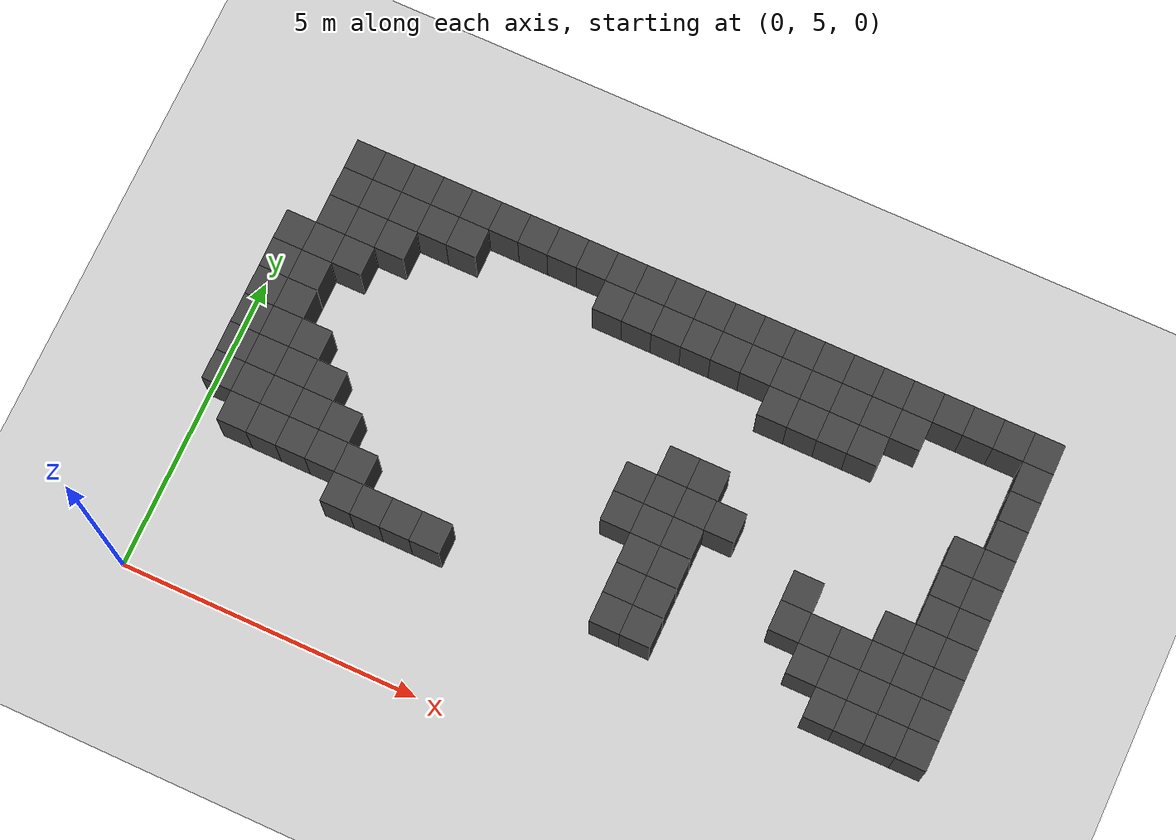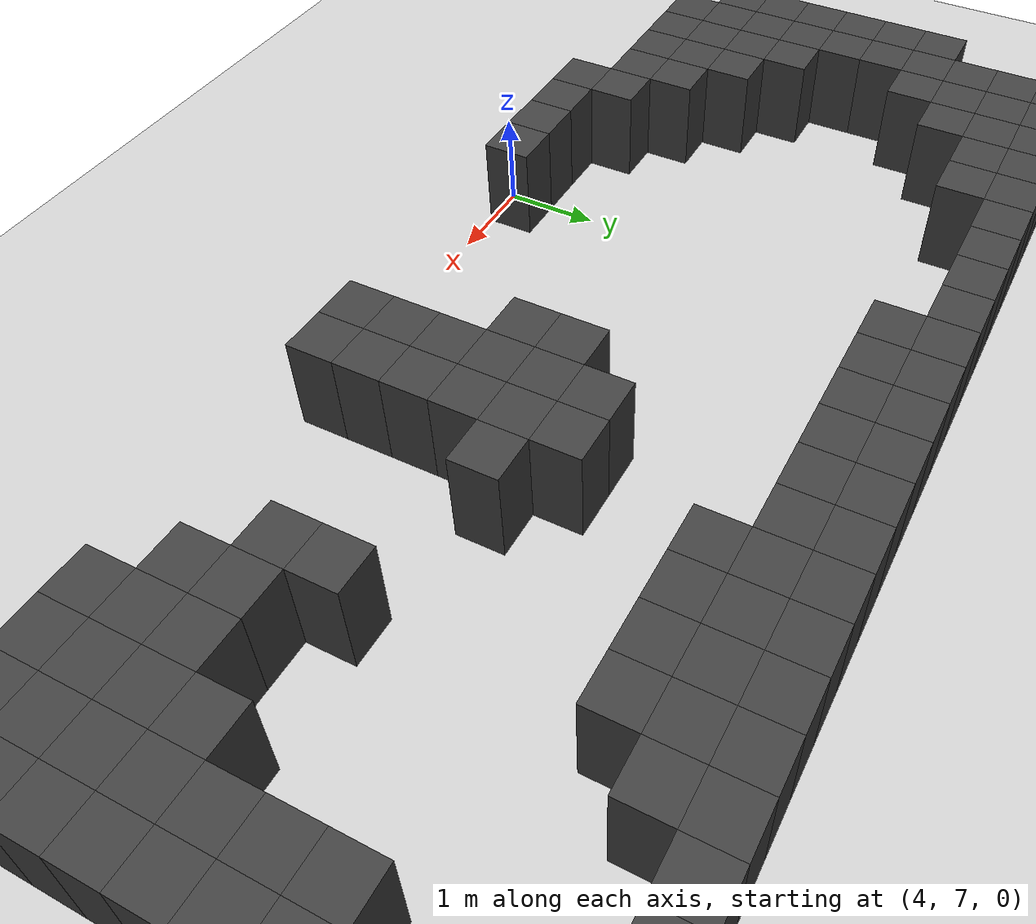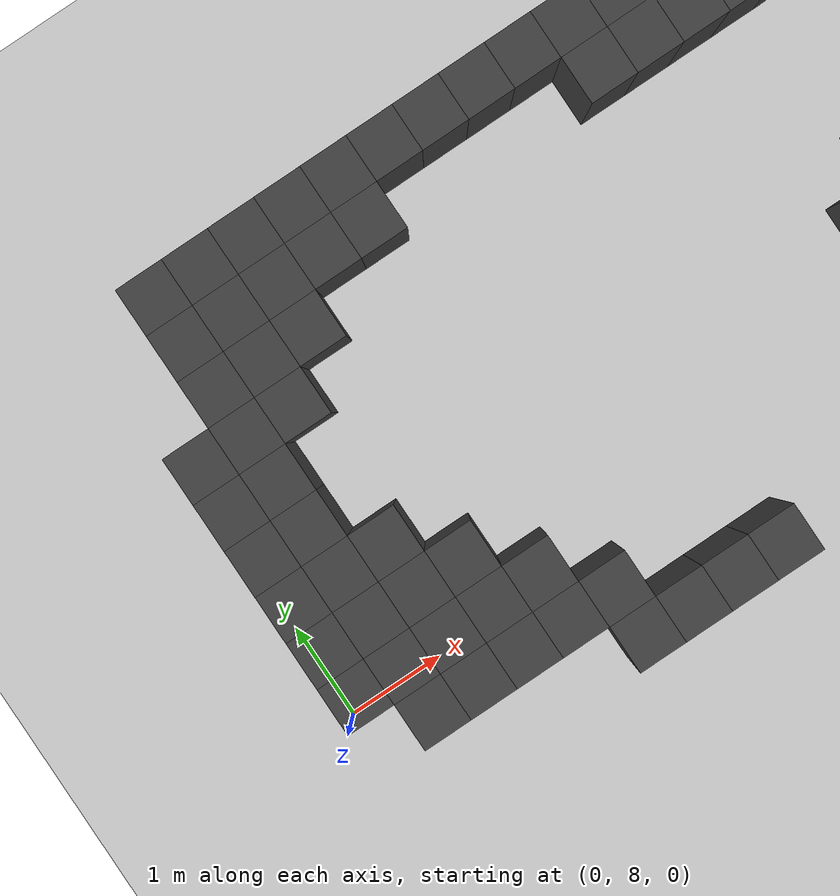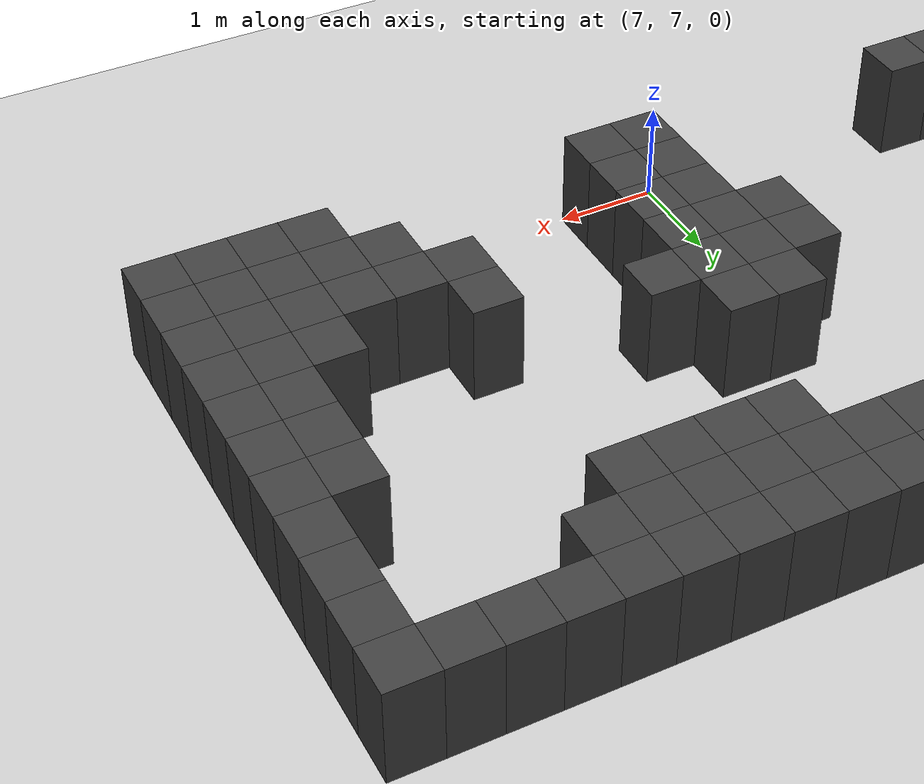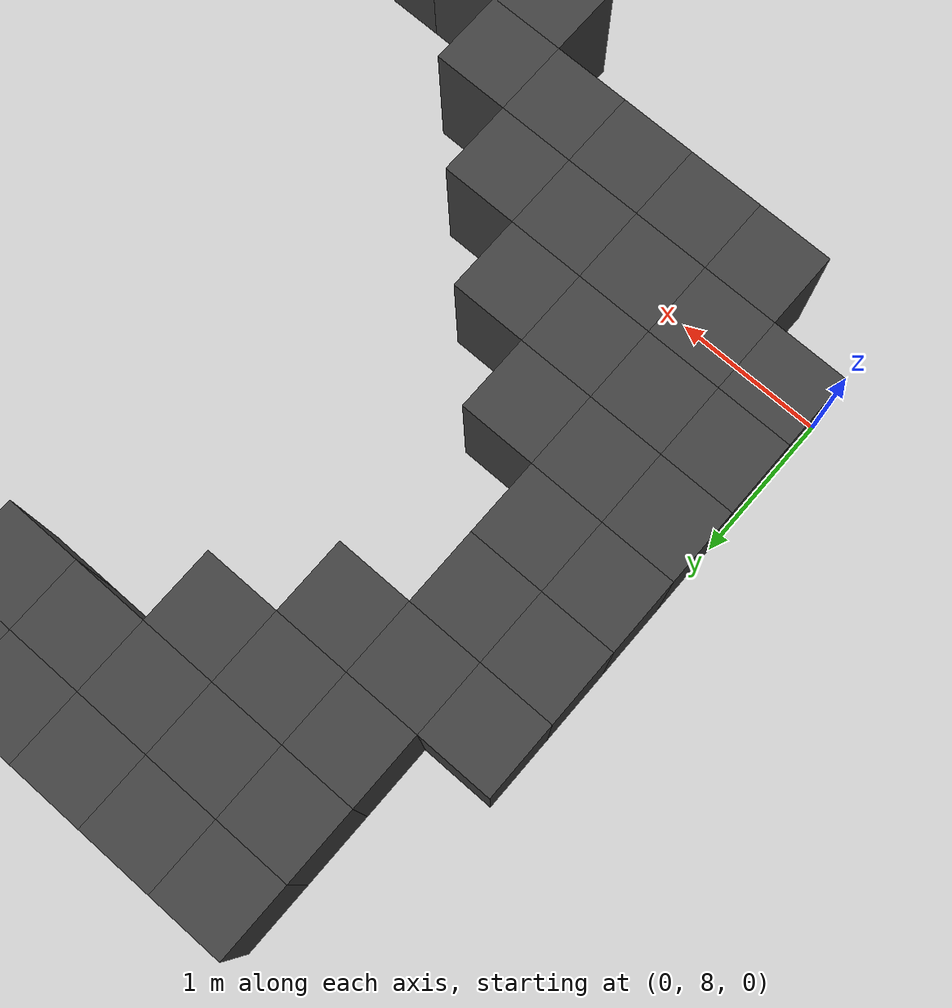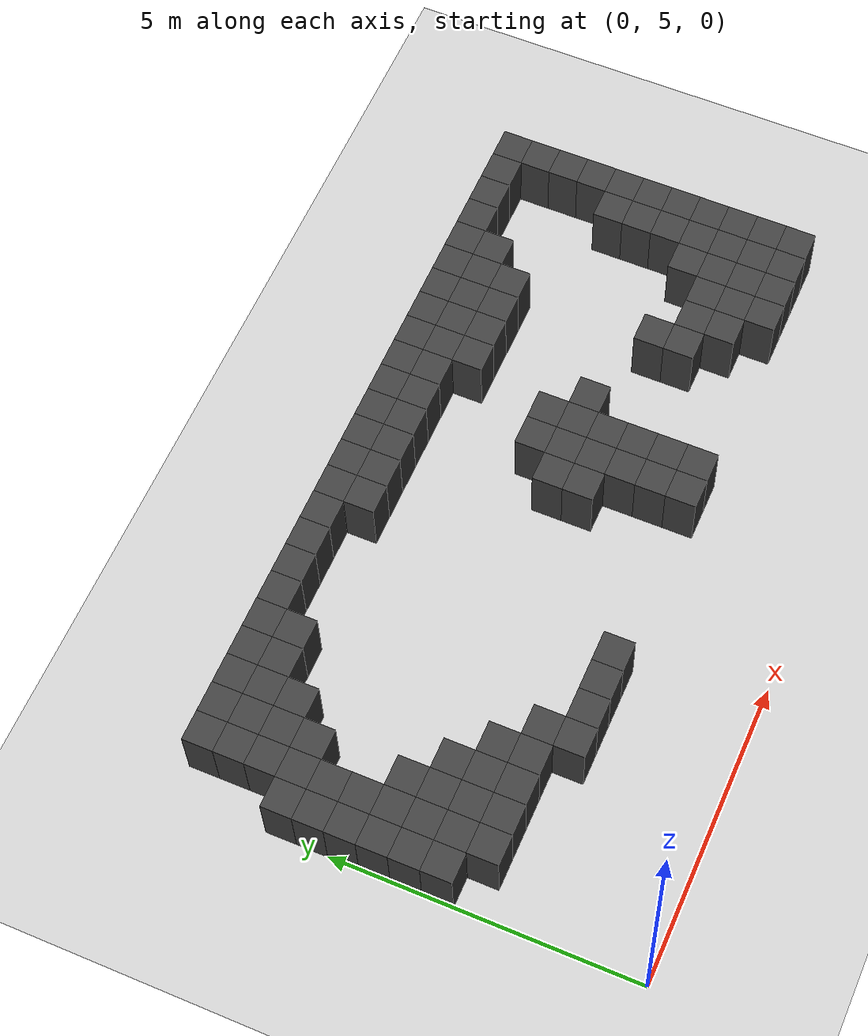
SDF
<sdf version="1.7">
 <world name="map_9061">
  <model name="ground_plane">
   <static>true</static>
   <link name="link">
    <collision name="collision">
     <geometry><plane><normal>0 0 1</normal><size>200 200</size></plane></geometry>
    </collision>
    <visual name="visual">
     <geometry><plane><normal>0 0 1</normal><size>200 200</size></plane></geometry>
     <material><ambient>0.8 0.8 0.8 1</ambient><diffuse>0.8 0.8 0.8 1</diffuse></material>
    </visual>
   </link>
  </model>
  <model name="maze_environment">
   <static>true</static>
   <link name="wall_26">
    <pose>0.750 12.250 0.500 0 0 0</pose>
    <collision name="col"><geometry><box><size>0.5 0.5 1.0</size></box></geometry></collision>
    <visual name="vis">
     <geometry><box><size>0.5 0.5 1.0</size></box></geometry>
     <material><ambient>0.15 0.15 0.15 1</ambient><diffuse>0.25 0.25 0.25 1</diffuse></material>
    </visual>
   </link>
   <link name="wall_27">
    <pose>1.250 12.250 0.500 0 0 0</pose>
    <collision name="col"><geometry><box><size>0.5 0.5 1.0</size></box></geometry></collision>
    <visual name="vis">
     <geometry><box><size>0.5 0.5 1.0</size></box></geometry>
     <material><ambient>0.15 0.15 0.15 1</ambient><diffuse>0.25 0.25 0.25 1</diffuse></material>
    </visual>
   </link>
   <link name="wall_28">
    <pose>1.750 12.250 0.500 0 0 0</pose>
    <collision name="col"><geometry><box><size>0.5 0.5 1.0</size></box></geometry></collision>
    <visual name="vis">
     <geometry><box><size>0.5 0.5 1.0</size></box></geometry>
     <material><ambient>0.15 0.15 0.15 1</ambient><diffuse>0.25 0.25 0.25 1</diffuse></material>
    </visual>
   </link>
   <link name="wall_29">
    <pose>2.250 12.250 0.500 0 0 0</pose>
    <collision name="col"><geometry><box><size>0.5 0.5 1.0</size></box></geometry></collision>
    <visual name="vis">
     <geometry><box><size>0.5 0.5 1.0</size></box></geometry>
     <material><ambient>0.15 0.15 0.15 1</ambient><diffuse>0.25 0.25 0.25 1</diffuse></material>
    </visual>
   </link>
   <link name="wall_30">
    <pose>2.750 12.250 0.500 0 0 0</pose>
    <collision name="col"><geometry><box><size>0.5 0.5 1.0</size></box></geometry></collision>
    <visual name="vis">
     <geometry><box><size>0.5 0.5 1.0</size></box></geometry>
     <material><ambient>0.15 0.15 0.15 1</ambient><diffuse>0.25 0.25 0.25 1</diffuse></material>
    </visual>
   </link>
   <link name="wall_31">
    <pose>3.250 12.250 0.500 0 0 0</pose>
    <collision name="col"><geometry><box><size>0.5 0.5 1.0</size></box></geometry></collision>
    <visual name="vis">
     <geometry><box><size>0.5 0.5 1.0</size></box></geometry>
     <material><ambient>0.15 0.15 0.15 1</ambient><diffuse>0.25 0.25 0.25 1</diffuse></material>
    </visual>
   </link>
   <link name="wall_32">
    <pose>3.750 12.250 0.500 0 0 0</pose>
    <collision name="col"><geometry><box><size>0.5 0.5 1.0</size></box></geometry></collision>
    <visual name="vis">
     <geometry><box><size>0.5 0.5 1.0</size></box></geometry>
     <material><ambient>0.15 0.15 0.15 1</ambient><diffuse>0.25 0.25 0.25 1</diffuse></material>
    </visual>
   </link>
   <link name="wall_33">
    <pose>4.250 12.250 0.500 0 0 0</pose>
    <collision name="col"><geometry><box><size>0.5 0.5 1.0</size></box></geometry></collision>
    <visual name="vis">
     <geometry><box><size>0.5 0.5 1.0</size></box></geometry>
     <material><ambient>0.15 0.15 0.15 1</ambient><diffuse>0.25 0.25 0.25 1</diffuse></material>
    </visual>
   </link>
   <link name="wall_34">
    <pose>4.750 12.250 0.500 0 0 0</pose>
    <collision name="col"><geometry><box><size>0.5 0.5 1.0</size></box></geometry></collision>
    <visual name="vis">
     <geometry><box><size>0.5 0.5 1.0</size></box></geometry>
     <material><ambient>0.15 0.15 0.15 1</ambient><diffuse>0.25 0.25 0.25 1</diffuse></material>
    </visual>
   </link>
   <link name="wall_35">
    <pose>5.250 12.250 0.500 0 0 0</pose>
    <collision name="col"><geometry><box><size>0.5 0.5 1.0</size></box></geometry></collision>
    <visual name="vis">
     <geometry><box><size>0.5 0.5 1.0</size></box></geometry>
     <material><ambient>0.15 0.15 0.15 1</ambient><diffuse>0.25 0.25 0.25 1</diffuse></material>
    </visual>
   </link>
   <link name="wall_36">
    <pose>5.750 12.250 0.500 0 0 0</pose>
    <collision name="col"><geometry><box><size>0.5 0.5 1.0</size></box></geometry></collision>
    <visual name="vis">
     <geometry><box><size>0.5 0.5 1.0</size></box></geometry>
     <material><ambient>0.15 0.15 0.15 1</ambient><diffuse>0.25 0.25 0.25 1</diffuse></material>
    </visual>
   </link>
   <link name="wall_37">
    <pose>6.250 12.250 0.500 0 0 0</pose>
    <collision name="col"><geometry><box><size>0.5 0.5 1.0</size></box></geometry></collision>
    <visual name="vis">
     <geometry><box><size>0.5 0.5 1.0</size></box></geometry>
     <material><ambient>0.15 0.15 0.15 1</ambient><diffuse>0.25 0.25 0.25 1</diffuse></material>
    </visual>
   </link>
   <link name="wall_38">
    <pose>6.750 12.250 0.500 0 0 0</pose>
    <collision name="col"><geometry><box><size>0.5 0.5 1.0</size></box></geometry></collision>
    <visual name="vis">
     <geometry><box><size>0.5 0.5 1.0</size></box></geometry>
     <material><ambient>0.15 0.15 0.15 1</ambient><diffuse>0.25 0.25 0.25 1</diffuse></material>
    </visual>
   </link>
   <link name="wall_39">
    <pose>7.250 12.250 0.500 0 0 0</pose>
    <collision name="col"><geometry><box><size>0.5 0.5 1.0</size></box></geometry></collision>
    <visual name="vis">
     <geometry><box><size>0.5 0.5 1.0</size></box></geometry>
     <material><ambient>0.15 0.15 0.15 1</ambient><diffuse>0.25 0.25 0.25 1</diffuse></material>
    </visual>
   </link>
   <link name="wall_40">
    <pose>7.750 12.250 0.500 0 0 0</pose>
    <collision name="col"><geometry><box><size>0.5 0.5 1.0</size></box></geometry></collision>
    <visual name="vis">
     <geometry><box><size>0.5 0.5 1.0</size></box></geometry>
     <material><ambient>0.15 0.15 0.15 1</ambient><diffuse>0.25 0.25 0.25 1</diffuse></material>
    </visual>
   </link>
   <link name="wall_41">
    <pose>8.250 12.250 0.500 0 0 0</pose>
    <collision name="col"><geometry><box><size>0.5 0.5 1.0</size></box></geometry></collision>
    <visual name="vis">
     <geometry><box><size>0.5 0.5 1.0</size></box></geometry>
     <material><ambient>0.15 0.15 0.15 1</ambient><diffuse>0.25 0.25 0.25 1</diffuse></material>
    </visual>
   </link>
   <link name="wall_42">
    <pose>8.750 12.250 0.500 0 0 0</pose>
    <collision name="col"><geometry><box><size>0.5 0.5 1.0</size></box></geometry></collision>
    <visual name="vis">
     <geometry><box><size>0.5 0.5 1.0</size></box></geometry>
     <material><ambient>0.15 0.15 0.15 1</ambient><diffuse>0.25 0.25 0.25 1</diffuse></material>
    </visual>
   </link>
   <link name="wall_43">
    <pose>9.250 12.250 0.500 0 0 0</pose>
    <collision name="col"><geometry><box><size>0.5 0.5 1.0</size></box></geometry></collision>
    <visual name="vis">
     <geometry><box><size>0.5 0.5 1.0</size></box></geometry>
     <material><ambient>0.15 0.15 0.15 1</ambient><diffuse>0.25 0.25 0.25 1</diffuse></material>
    </visual>
   </link>
   <link name="wall_44">
    <pose>9.750 12.250 0.500 0 0 0</pose>
    <collision name="col"><geometry><box><size>0.5 0.5 1.0</size></box></geometry></collision>
    <visual name="vis">
     <geometry><box><size>0.5 0.5 1.0</size></box></geometry>
     <material><ambient>0.15 0.15 0.15 1</ambient><diffuse>0.25 0.25 0.25 1</diffuse></material>
    </visual>
   </link>
   <link name="wall_45">
    <pose>10.250 12.250 0.500 0 0 0</pose>
    <collision name="col"><geometry><box><size>0.5 0.5 1.0</size></box></geometry></collision>
    <visual name="vis">
     <geometry><box><size>0.5 0.5 1.0</size></box></geometry>
     <material><ambient>0.15 0.15 0.15 1</ambient><diffuse>0.25 0.25 0.25 1</diffuse></material>
    </visual>
   </link>
   <link name="wall_46">
    <pose>10.750 12.250 0.500 0 0 0</pose>
    <collision name="col"><geometry><box><size>0.5 0.5 1.0</size></box></geometry></collision>
    <visual name="vis">
     <geometry><box><size>0.5 0.5 1.0</size></box></geometry>
     <material><ambient>0.15 0.15 0.15 1</ambient><diffuse>0.25 0.25 0.25 1</diffuse></material>
    </visual>
   </link>
   <link name="wall_47">
    <pose>11.250 12.250 0.500 0 0 0</pose>
    <collision name="col"><geometry><box><size>0.5 0.5 1.0</size></box></geometry></collision>
    <visual name="vis">
     <geometry><box><size>0.5 0.5 1.0</size></box></geometry>
     <material><ambient>0.15 0.15 0.15 1</ambient><diffuse>0.25 0.25 0.25 1</diffuse></material>
    </visual>
   </link>
   <link name="wall_48">
    <pose>11.750 12.250 0.500 0 0 0</pose>
    <collision name="col"><geometry><box><size>0.5 0.5 1.0</size></box></geometry></collision>
    <visual name="vis">
     <geometry><box><size>0.5 0.5 1.0</size></box></geometry>
     <material><ambient>0.15 0.15 0.15 1</ambient><diffuse>0.25 0.25 0.25 1</diffuse></material>
    </visual>
   </link>
   <link name="wall_49">
    <pose>12.250 12.250 0.500 0 0 0</pose>
    <collision name="col"><geometry><box><size>0.5 0.5 1.0</size></box></geometry></collision>
    <visual name="vis">
     <geometry><box><size>0.5 0.5 1.0</size></box></geometry>
     <material><ambient>0.15 0.15 0.15 1</ambient><diffuse>0.25 0.25 0.25 1</diffuse></material>
    </visual>
   </link>
   <link name="wall_60">
    <pose>0.750 11.750 0.500 0 0 0</pose>
    <collision name="col"><geometry><box><size>0.5 0.5 1.0</size></box></geometry></collision>
    <visual name="vis">
     <geometry><box><size>0.5 0.5 1.0</size></box></geometry>
     <material><ambient>0.15 0.15 0.15 1</ambient><diffuse>0.25 0.25 0.25 1</diffuse></material>
    </visual>
   </link>
   <link name="wall_61">
    <pose>1.250 11.750 0.500 0 0 0</pose>
    <collision name="col"><geometry><box><size>0.5 0.5 1.0</size></box></geometry></collision>
    <visual name="vis">
     <geometry><box><size>0.5 0.5 1.0</size></box></geometry>
     <material><ambient>0.15 0.15 0.15 1</ambient><diffuse>0.25 0.25 0.25 1</diffuse></material>
    </visual>
   </link>
   <link name="wall_62">
    <pose>1.750 11.750 0.500 0 0 0</pose>
    <collision name="col"><geometry><box><size>0.5 0.5 1.0</size></box></geometry></collision>
    <visual name="vis">
     <geometry><box><size>0.5 0.5 1.0</size></box></geometry>
     <material><ambient>0.15 0.15 0.15 1</ambient><diffuse>0.25 0.25 0.25 1</diffuse></material>
    </visual>
   </link>
   <link name="wall_63">
    <pose>2.250 11.750 0.500 0 0 0</pose>
    <collision name="col"><geometry><box><size>0.5 0.5 1.0</size></box></geometry></collision>
    <visual name="vis">
     <geometry><box><size>0.5 0.5 1.0</size></box></geometry>
     <material><ambient>0.15 0.15 0.15 1</ambient><diffuse>0.25 0.25 0.25 1</diffuse></material>
    </visual>
   </link>
   <link name="wall_64">
    <pose>2.750 11.750 0.500 0 0 0</pose>
    <collision name="col"><geometry><box><size>0.5 0.5 1.0</size></box></geometry></collision>
    <visual name="vis">
     <geometry><box><size>0.5 0.5 1.0</size></box></geometry>
     <material><ambient>0.15 0.15 0.15 1</ambient><diffuse>0.25 0.25 0.25 1</diffuse></material>
    </visual>
   </link>
   <link name="wall_65">
    <pose>5.250 11.750 0.500 0 0 0</pose>
    <collision name="col"><geometry><box><size>0.5 0.5 1.0</size></box></geometry></collision>
    <visual name="vis">
     <geometry><box><size>0.5 0.5 1.0</size></box></geometry>
     <material><ambient>0.15 0.15 0.15 1</ambient><diffuse>0.25 0.25 0.25 1</diffuse></material>
    </visual>
   </link>
   <link name="wall_66">
    <pose>5.750 11.750 0.500 0 0 0</pose>
    <collision name="col"><geometry><box><size>0.5 0.5 1.0</size></box></geometry></collision>
    <visual name="vis">
     <geometry><box><size>0.5 0.5 1.0</size></box></geometry>
     <material><ambient>0.15 0.15 0.15 1</ambient><diffuse>0.25 0.25 0.25 1</diffuse></material>
    </visual>
   </link>
   <link name="wall_67">
    <pose>6.250 11.750 0.500 0 0 0</pose>
    <collision name="col"><geometry><box><size>0.5 0.5 1.0</size></box></geometry></collision>
    <visual name="vis">
     <geometry><box><size>0.5 0.5 1.0</size></box></geometry>
     <material><ambient>0.15 0.15 0.15 1</ambient><diffuse>0.25 0.25 0.25 1</diffuse></material>
    </visual>
   </link>
   <link name="wall_68">
    <pose>6.750 11.750 0.500 0 0 0</pose>
    <collision name="col"><geometry><box><size>0.5 0.5 1.0</size></box></geometry></collision>
    <visual name="vis">
     <geometry><box><size>0.5 0.5 1.0</size></box></geometry>
     <material><ambient>0.15 0.15 0.15 1</ambient><diffuse>0.25 0.25 0.25 1</diffuse></material>
    </visual>
   </link>
   <link name="wall_69">
    <pose>7.250 11.750 0.500 0 0 0</pose>
    <collision name="col"><geometry><box><size>0.5 0.5 1.0</size></box></geometry></collision>
    <visual name="vis">
     <geometry><box><size>0.5 0.5 1.0</size></box></geometry>
     <material><ambient>0.15 0.15 0.15 1</ambient><diffuse>0.25 0.25 0.25 1</diffuse></material>
    </visual>
   </link>
   <link name="wall_70">
    <pose>7.750 11.750 0.500 0 0 0</pose>
    <collision name="col"><geometry><box><size>0.5 0.5 1.0</size></box></geometry></collision>
    <visual name="vis">
     <geometry><box><size>0.5 0.5 1.0</size></box></geometry>
     <material><ambient>0.15 0.15 0.15 1</ambient><diffuse>0.25 0.25 0.25 1</diffuse></material>
    </visual>
   </link>
   <link name="wall_71">
    <pose>8.250 11.750 0.500 0 0 0</pose>
    <collision name="col"><geometry><box><size>0.5 0.5 1.0</size></box></geometry></collision>
    <visual name="vis">
     <geometry><box><size>0.5 0.5 1.0</size></box></geometry>
     <material><ambient>0.15 0.15 0.15 1</ambient><diffuse>0.25 0.25 0.25 1</diffuse></material>
    </visual>
   </link>
   <link name="wall_72">
    <pose>8.750 11.750 0.500 0 0 0</pose>
    <collision name="col"><geometry><box><size>0.5 0.5 1.0</size></box></geometry></collision>
    <visual name="vis">
     <geometry><box><size>0.5 0.5 1.0</size></box></geometry>
     <material><ambient>0.15 0.15 0.15 1</ambient><diffuse>0.25 0.25 0.25 1</diffuse></material>
    </visual>
   </link>
   <link name="wall_73">
    <pose>9.250 11.750 0.500 0 0 0</pose>
    <collision name="col"><geometry><box><size>0.5 0.5 1.0</size></box></geometry></collision>
    <visual name="vis">
     <geometry><box><size>0.5 0.5 1.0</size></box></geometry>
     <material><ambient>0.15 0.15 0.15 1</ambient><diffuse>0.25 0.25 0.25 1</diffuse></material>
    </visual>
   </link>
   <link name="wall_74">
    <pose>9.750 11.750 0.500 0 0 0</pose>
    <collision name="col"><geometry><box><size>0.5 0.5 1.0</size></box></geometry></collision>
    <visual name="vis">
     <geometry><box><size>0.5 0.5 1.0</size></box></geometry>
     <material><ambient>0.15 0.15 0.15 1</ambient><diffuse>0.25 0.25 0.25 1</diffuse></material>
    </visual>
   </link>
   <link name="wall_75">
    <pose>10.250 11.750 0.500 0 0 0</pose>
    <collision name="col"><geometry><box><size>0.5 0.5 1.0</size></box></geometry></collision>
    <visual name="vis">
     <geometry><box><size>0.5 0.5 1.0</size></box></geometry>
     <material><ambient>0.15 0.15 0.15 1</ambient><diffuse>0.25 0.25 0.25 1</diffuse></material>
    </visual>
   </link>
   <link name="wall_76">
    <pose>12.250 11.750 0.500 0 0 0</pose>
    <collision name="col"><geometry><box><size>0.5 0.5 1.0</size></box></geometry></collision>
    <visual name="vis">
     <geometry><box><size>0.5 0.5 1.0</size></box></geometry>
     <material><ambient>0.15 0.15 0.15 1</ambient><diffuse>0.25 0.25 0.25 1</diffuse></material>
    </visual>
   </link>
   <link name="wall_81">
    <pose>0.750 11.250 0.500 0 0 0</pose>
    <collision name="col"><geometry><box><size>0.5 0.5 1.0</size></box></geometry></collision>
    <visual name="vis">
     <geometry><box><size>0.5 0.5 1.0</size></box></geometry>
     <material><ambient>0.15 0.15 0.15 1</ambient><diffuse>0.25 0.25 0.25 1</diffuse></material>
    </visual>
   </link>
   <link name="wall_82">
    <pose>1.250 11.250 0.500 0 0 0</pose>
    <collision name="col"><geometry><box><size>0.5 0.5 1.0</size></box></geometry></collision>
    <visual name="vis">
     <geometry><box><size>0.5 0.5 1.0</size></box></geometry>
     <material><ambient>0.15 0.15 0.15 1</ambient><diffuse>0.25 0.25 0.25 1</diffuse></material>
    </visual>
   </link>
   <link name="wall_83">
    <pose>1.750 11.250 0.500 0 0 0</pose>
    <collision name="col"><geometry><box><size>0.5 0.5 1.0</size></box></geometry></collision>
    <visual name="vis">
     <geometry><box><size>0.5 0.5 1.0</size></box></geometry>
     <material><ambient>0.15 0.15 0.15 1</ambient><diffuse>0.25 0.25 0.25 1</diffuse></material>
    </visual>
   </link>
   <link name="wall_84">
    <pose>8.250 11.250 0.500 0 0 0</pose>
    <collision name="col"><geometry><box><size>0.5 0.5 1.0</size></box></geometry></collision>
    <visual name="vis">
     <geometry><box><size>0.5 0.5 1.0</size></box></geometry>
     <material><ambient>0.15 0.15 0.15 1</ambient><diffuse>0.25 0.25 0.25 1</diffuse></material>
    </visual>
   </link>
   <link name="wall_85">
    <pose>8.750 11.250 0.500 0 0 0</pose>
    <collision name="col"><geometry><box><size>0.5 0.5 1.0</size></box></geometry></collision>
    <visual name="vis">
     <geometry><box><size>0.5 0.5 1.0</size></box></geometry>
     <material><ambient>0.15 0.15 0.15 1</ambient><diffuse>0.25 0.25 0.25 1</diffuse></material>
    </visual>
   </link>
   <link name="wall_86">
    <pose>9.250 11.250 0.500 0 0 0</pose>
    <collision name="col"><geometry><box><size>0.5 0.5 1.0</size></box></geometry></collision>
    <visual name="vis">
     <geometry><box><size>0.5 0.5 1.0</size></box></geometry>
     <material><ambient>0.15 0.15 0.15 1</ambient><diffuse>0.25 0.25 0.25 1</diffuse></material>
    </visual>
   </link>
   <link name="wall_87">
    <pose>9.750 11.250 0.500 0 0 0</pose>
    <collision name="col"><geometry><box><size>0.5 0.5 1.0</size></box></geometry></collision>
    <visual name="vis">
     <geometry><box><size>0.5 0.5 1.0</size></box></geometry>
     <material><ambient>0.15 0.15 0.15 1</ambient><diffuse>0.25 0.25 0.25 1</diffuse></material>
    </visual>
   </link>
   <link name="wall_88">
    <pose>12.250 11.250 0.500 0 0 0</pose>
    <collision name="col"><geometry><box><size>0.5 0.5 1.0</size></box></geometry></collision>
    <visual name="vis">
     <geometry><box><size>0.5 0.5 1.0</size></box></geometry>
     <material><ambient>0.15 0.15 0.15 1</ambient><diffuse>0.25 0.25 0.25 1</diffuse></material>
    </visual>
   </link>
   <link name="wall_92">
    <pose>0.250 10.750 0.500 0 0 0</pose>
    <collision name="col"><geometry><box><size>0.5 0.5 1.0</size></box></geometry></collision>
    <visual name="vis">
     <geometry><box><size>0.5 0.5 1.0</size></box></geometry>
     <material><ambient>0.15 0.15 0.15 1</ambient><diffuse>0.25 0.25 0.25 1</diffuse></material>
    </visual>
   </link>
   <link name="wall_93">
    <pose>0.750 10.750 0.500 0 0 0</pose>
    <collision name="col"><geometry><box><size>0.5 0.5 1.0</size></box></geometry></collision>
    <visual name="vis">
     <geometry><box><size>0.5 0.5 1.0</size></box></geometry>
     <material><ambient>0.15 0.15 0.15 1</ambient><diffuse>0.25 0.25 0.25 1</diffuse></material>
    </visual>
   </link>
   <link name="wall_94">
    <pose>1.250 10.750 0.500 0 0 0</pose>
    <collision name="col"><geometry><box><size>0.5 0.5 1.0</size></box></geometry></collision>
    <visual name="vis">
     <geometry><box><size>0.5 0.5 1.0</size></box></geometry>
     <material><ambient>0.15 0.15 0.15 1</ambient><diffuse>0.25 0.25 0.25 1</diffuse></material>
    </visual>
   </link>
   <link name="wall_95">
    <pose>12.250 10.750 0.500 0 0 0</pose>
    <collision name="col"><geometry><box><size>0.5 0.5 1.0</size></box></geometry></collision>
    <visual name="vis">
     <geometry><box><size>0.5 0.5 1.0</size></box></geometry>
     <material><ambient>0.15 0.15 0.15 1</ambient><diffuse>0.25 0.25 0.25 1</diffuse></material>
    </visual>
   </link>
   <link name="wall_102">
    <pose>0.250 10.250 0.500 0 0 0</pose>
    <collision name="col"><geometry><box><size>0.5 0.5 1.0</size></box></geometry></collision>
    <visual name="vis">
     <geometry><box><size>0.5 0.5 1.0</size></box></geometry>
     <material><ambient>0.15 0.15 0.15 1</ambient><diffuse>0.25 0.25 0.25 1</diffuse></material>
    </visual>
   </link>
   <link name="wall_103">
    <pose>0.750 10.250 0.500 0 0 0</pose>
    <collision name="col"><geometry><box><size>0.5 0.5 1.0</size></box></geometry></collision>
    <visual name="vis">
     <geometry><box><size>0.5 0.5 1.0</size></box></geometry>
     <material><ambient>0.15 0.15 0.15 1</ambient><diffuse>0.25 0.25 0.25 1</diffuse></material>
    </visual>
   </link>
   <link name="wall_104">
    <pose>11.750 10.250 0.500 0 0 0</pose>
    <collision name="col"><geometry><box><size>0.5 0.5 1.0</size></box></geometry></collision>
    <visual name="vis">
     <geometry><box><size>0.5 0.5 1.0</size></box></geometry>
     <material><ambient>0.15 0.15 0.15 1</ambient><diffuse>0.25 0.25 0.25 1</diffuse></material>
    </visual>
   </link>
   <link name="wall_105">
    <pose>12.250 10.250 0.500 0 0 0</pose>
    <collision name="col"><geometry><box><size>0.5 0.5 1.0</size></box></geometry></collision>
    <visual name="vis">
     <geometry><box><size>0.5 0.5 1.0</size></box></geometry>
     <material><ambient>0.15 0.15 0.15 1</ambient><diffuse>0.25 0.25 0.25 1</diffuse></material>
    </visual>
   </link>
   <link name="wall_113">
    <pose>0.250 9.750 0.500 0 0 0</pose>
    <collision name="col"><geometry><box><size>0.5 0.5 1.0</size></box></geometry></collision>
    <visual name="vis">
     <geometry><box><size>0.5 0.5 1.0</size></box></geometry>
     <material><ambient>0.15 0.15 0.15 1</ambient><diffuse>0.25 0.25 0.25 1</diffuse></material>
    </visual>
   </link>
   <link name="wall_114">
    <pose>0.750 9.750 0.500 0 0 0</pose>
    <collision name="col"><geometry><box><size>0.5 0.5 1.0</size></box></geometry></collision>
    <visual name="vis">
     <geometry><box><size>0.5 0.5 1.0</size></box></geometry>
     <material><ambient>0.15 0.15 0.15 1</ambient><diffuse>0.25 0.25 0.25 1</diffuse></material>
    </visual>
   </link>
   <link name="wall_115">
    <pose>7.250 9.750 0.500 0 0 0</pose>
    <collision name="col"><geometry><box><size>0.5 0.5 1.0</size></box></geometry></collision>
    <visual name="vis">
     <geometry><box><size>0.5 0.5 1.0</size></box></geometry>
     <material><ambient>0.15 0.15 0.15 1</ambient><diffuse>0.25 0.25 0.25 1</diffuse></material>
    </visual>
   </link>
   <link name="wall_116">
    <pose>7.750 9.750 0.500 0 0 0</pose>
    <collision name="col"><geometry><box><size>0.5 0.5 1.0</size></box></geometry></collision>
    <visual name="vis">
     <geometry><box><size>0.5 0.5 1.0</size></box></geometry>
     <material><ambient>0.15 0.15 0.15 1</ambient><diffuse>0.25 0.25 0.25 1</diffuse></material>
    </visual>
   </link>
   <link name="wall_117">
    <pose>11.750 9.750 0.500 0 0 0</pose>
    <collision name="col"><geometry><box><size>0.5 0.5 1.0</size></box></geometry></collision>
    <visual name="vis">
     <geometry><box><size>0.5 0.5 1.0</size></box></geometry>
     <material><ambient>0.15 0.15 0.15 1</ambient><diffuse>0.25 0.25 0.25 1</diffuse></material>
    </visual>
   </link>
   <link name="wall_118">
    <pose>12.250 9.750 0.500 0 0 0</pose>
    <collision name="col"><geometry><box><size>0.5 0.5 1.0</size></box></geometry></collision>
    <visual name="vis">
     <geometry><box><size>0.5 0.5 1.0</size></box></geometry>
     <material><ambient>0.15 0.15 0.15 1</ambient><diffuse>0.25 0.25 0.25 1</diffuse></material>
    </visual>
   </link>
   <link name="wall_128">
    <pose>0.250 9.250 0.500 0 0 0</pose>
    <collision name="col"><geometry><box><size>0.5 0.5 1.0</size></box></geometry></collision>
    <visual name="vis">
     <geometry><box><size>0.5 0.5 1.0</size></box></geometry>
     <material><ambient>0.15 0.15 0.15 1</ambient><diffuse>0.25 0.25 0.25 1</diffuse></material>
    </visual>
   </link>
   <link name="wall_129">
    <pose>0.750 9.250 0.500 0 0 0</pose>
    <collision name="col"><geometry><box><size>0.5 0.5 1.0</size></box></geometry></collision>
    <visual name="vis">
     <geometry><box><size>0.5 0.5 1.0</size></box></geometry>
     <material><ambient>0.15 0.15 0.15 1</ambient><diffuse>0.25 0.25 0.25 1</diffuse></material>
    </visual>
   </link>
   <link name="wall_130">
    <pose>1.250 9.250 0.500 0 0 0</pose>
    <collision name="col"><geometry><box><size>0.5 0.5 1.0</size></box></geometry></collision>
    <visual name="vis">
     <geometry><box><size>0.5 0.5 1.0</size></box></geometry>
     <material><ambient>0.15 0.15 0.15 1</ambient><diffuse>0.25 0.25 0.25 1</diffuse></material>
    </visual>
   </link>
   <link name="wall_131">
    <pose>6.750 9.250 0.500 0 0 0</pose>
    <collision name="col"><geometry><box><size>0.5 0.5 1.0</size></box></geometry></collision>
    <visual name="vis">
     <geometry><box><size>0.5 0.5 1.0</size></box></geometry>
     <material><ambient>0.15 0.15 0.15 1</ambient><diffuse>0.25 0.25 0.25 1</diffuse></material>
    </visual>
   </link>
   <link name="wall_132">
    <pose>7.250 9.250 0.500 0 0 0</pose>
    <collision name="col"><geometry><box><size>0.5 0.5 1.0</size></box></geometry></collision>
    <visual name="vis">
     <geometry><box><size>0.5 0.5 1.0</size></box></geometry>
     <material><ambient>0.15 0.15 0.15 1</ambient><diffuse>0.25 0.25 0.25 1</diffuse></material>
    </visual>
   </link>
   <link name="wall_133">
    <pose>7.750 9.250 0.500 0 0 0</pose>
    <collision name="col"><geometry><box><size>0.5 0.5 1.0</size></box></geometry></collision>
    <visual name="vis">
     <geometry><box><size>0.5 0.5 1.0</size></box></geometry>
     <material><ambient>0.15 0.15 0.15 1</ambient><diffuse>0.25 0.25 0.25 1</diffuse></material>
    </visual>
   </link>
   <link name="wall_134">
    <pose>8.250 9.250 0.500 0 0 0</pose>
    <collision name="col"><geometry><box><size>0.5 0.5 1.0</size></box></geometry></collision>
    <visual name="vis">
     <geometry><box><size>0.5 0.5 1.0</size></box></geometry>
     <material><ambient>0.15 0.15 0.15 1</ambient><diffuse>0.25 0.25 0.25 1</diffuse></material>
    </visual>
   </link>
   <link name="wall_135">
    <pose>11.750 9.250 0.500 0 0 0</pose>
    <collision name="col"><geometry><box><size>0.5 0.5 1.0</size></box></geometry></collision>
    <visual name="vis">
     <geometry><box><size>0.5 0.5 1.0</size></box></geometry>
     <material><ambient>0.15 0.15 0.15 1</ambient><diffuse>0.25 0.25 0.25 1</diffuse></material>
    </visual>
   </link>
   <link name="wall_136">
    <pose>12.250 9.250 0.500 0 0 0</pose>
    <collision name="col"><geometry><box><size>0.5 0.5 1.0</size></box></geometry></collision>
    <visual name="vis">
     <geometry><box><size>0.5 0.5 1.0</size></box></geometry>
     <material><ambient>0.15 0.15 0.15 1</ambient><diffuse>0.25 0.25 0.25 1</diffuse></material>
    </visual>
   </link>
   <link name="wall_147">
    <pose>0.250 8.750 0.500 0 0 0</pose>
    <collision name="col"><geometry><box><size>0.5 0.5 1.0</size></box></geometry></collision>
    <visual name="vis">
     <geometry><box><size>0.5 0.5 1.0</size></box></geometry>
     <material><ambient>0.15 0.15 0.15 1</ambient><diffuse>0.25 0.25 0.25 1</diffuse></material>
    </visual>
   </link>
   <link name="wall_148">
    <pose>0.750 8.750 0.500 0 0 0</pose>
    <collision name="col"><geometry><box><size>0.5 0.5 1.0</size></box></geometry></collision>
    <visual name="vis">
     <geometry><box><size>0.5 0.5 1.0</size></box></geometry>
     <material><ambient>0.15 0.15 0.15 1</ambient><diffuse>0.25 0.25 0.25 1</diffuse></material>
    </visual>
   </link>
   <link name="wall_149">
    <pose>1.250 8.750 0.500 0 0 0</pose>
    <collision name="col"><geometry><box><size>0.5 0.5 1.0</size></box></geometry></collision>
    <visual name="vis">
     <geometry><box><size>0.5 0.5 1.0</size></box></geometry>
     <material><ambient>0.15 0.15 0.15 1</ambient><diffuse>0.25 0.25 0.25 1</diffuse></material>
    </visual>
   </link>
   <link name="wall_150">
    <pose>1.750 8.750 0.500 0 0 0</pose>
    <collision name="col"><geometry><box><size>0.5 0.5 1.0</size></box></geometry></collision>
    <visual name="vis">
     <geometry><box><size>0.5 0.5 1.0</size></box></geometry>
     <material><ambient>0.15 0.15 0.15 1</ambient><diffuse>0.25 0.25 0.25 1</diffuse></material>
    </visual>
   </link>
   <link name="wall_151">
    <pose>6.750 8.750 0.500 0 0 0</pose>
    <collision name="col"><geometry><box><size>0.5 0.5 1.0</size></box></geometry></collision>
    <visual name="vis">
     <geometry><box><size>0.5 0.5 1.0</size></box></geometry>
     <material><ambient>0.15 0.15 0.15 1</ambient><diffuse>0.25 0.25 0.25 1</diffuse></material>
    </visual>
   </link>
   <link name="wall_152">
    <pose>7.250 8.750 0.500 0 0 0</pose>
    <collision name="col"><geometry><box><size>0.5 0.5 1.0</size></box></geometry></collision>
    <visual name="vis">
     <geometry><box><size>0.5 0.5 1.0</size></box></geometry>
     <material><ambient>0.15 0.15 0.15 1</ambient><diffuse>0.25 0.25 0.25 1</diffuse></material>
    </visual>
   </link>
   <link name="wall_153">
    <pose>7.750 8.750 0.500 0 0 0</pose>
    <collision name="col"><geometry><box><size>0.5 0.5 1.0</size></box></geometry></collision>
    <visual name="vis">
     <geometry><box><size>0.5 0.5 1.0</size></box></geometry>
     <material><ambient>0.15 0.15 0.15 1</ambient><diffuse>0.25 0.25 0.25 1</diffuse></material>
    </visual>
   </link>
   <link name="wall_154">
    <pose>9.750 8.750 0.500 0 0 0</pose>
    <collision name="col"><geometry><box><size>0.5 0.5 1.0</size></box></geometry></collision>
    <visual name="vis">
     <geometry><box><size>0.5 0.5 1.0</size></box></geometry>
     <material><ambient>0.15 0.15 0.15 1</ambient><diffuse>0.25 0.25 0.25 1</diffuse></material>
    </visual>
   </link>
   <link name="wall_155">
    <pose>11.250 8.750 0.500 0 0 0</pose>
    <collision name="col"><geometry><box><size>0.5 0.5 1.0</size></box></geometry></collision>
    <visual name="vis">
     <geometry><box><size>0.5 0.5 1.0</size></box></geometry>
     <material><ambient>0.15 0.15 0.15 1</ambient><diffuse>0.25 0.25 0.25 1</diffuse></material>
    </visual>
   </link>
   <link name="wall_156">
    <pose>11.750 8.750 0.500 0 0 0</pose>
    <collision name="col"><geometry><box><size>0.5 0.5 1.0</size></box></geometry></collision>
    <visual name="vis">
     <geometry><box><size>0.5 0.5 1.0</size></box></geometry>
     <material><ambient>0.15 0.15 0.15 1</ambient><diffuse>0.25 0.25 0.25 1</diffuse></material>
    </visual>
   </link>
   <link name="wall_157">
    <pose>12.250 8.750 0.500 0 0 0</pose>
    <collision name="col"><geometry><box><size>0.5 0.5 1.0</size></box></geometry></collision>
    <visual name="vis">
     <geometry><box><size>0.5 0.5 1.0</size></box></geometry>
     <material><ambient>0.15 0.15 0.15 1</ambient><diffuse>0.25 0.25 0.25 1</diffuse></material>
    </visual>
   </link>
   <link name="wall_163">
    <pose>0.250 8.250 0.500 0 0 0</pose>
    <collision name="col"><geometry><box><size>0.5 0.5 1.0</size></box></geometry></collision>
    <visual name="vis">
     <geometry><box><size>0.5 0.5 1.0</size></box></geometry>
     <material><ambient>0.15 0.15 0.15 1</ambient><diffuse>0.25 0.25 0.25 1</diffuse></material>
    </visual>
   </link>
   <link name="wall_164">
    <pose>0.750 8.250 0.500 0 0 0</pose>
    <collision name="col"><geometry><box><size>0.5 0.5 1.0</size></box></geometry></collision>
    <visual name="vis">
     <geometry><box><size>0.5 0.5 1.0</size></box></geometry>
     <material><ambient>0.15 0.15 0.15 1</ambient><diffuse>0.25 0.25 0.25 1</diffuse></material>
    </visual>
   </link>
   <link name="wall_165">
    <pose>1.250 8.250 0.500 0 0 0</pose>
    <collision name="col"><geometry><box><size>0.5 0.5 1.0</size></box></geometry></collision>
    <visual name="vis">
     <geometry><box><size>0.5 0.5 1.0</size></box></geometry>
     <material><ambient>0.15 0.15 0.15 1</ambient><diffuse>0.25 0.25 0.25 1</diffuse></material>
    </visual>
   </link>
   <link name="wall_166">
    <pose>1.750 8.250 0.500 0 0 0</pose>
    <collision name="col"><geometry><box><size>0.5 0.5 1.0</size></box></geometry></collision>
    <visual name="vis">
     <geometry><box><size>0.5 0.5 1.0</size></box></geometry>
     <material><ambient>0.15 0.15 0.15 1</ambient><diffuse>0.25 0.25 0.25 1</diffuse></material>
    </visual>
   </link>
   <link name="wall_167">
    <pose>2.250 8.250 0.500 0 0 0</pose>
    <collision name="col"><geometry><box><size>0.5 0.5 1.0</size></box></geometry></collision>
    <visual name="vis">
     <geometry><box><size>0.5 0.5 1.0</size></box></geometry>
     <material><ambient>0.15 0.15 0.15 1</ambient><diffuse>0.25 0.25 0.25 1</diffuse></material>
    </visual>
   </link>
   <link name="wall_168">
    <pose>7.250 8.250 0.500 0 0 0</pose>
    <collision name="col"><geometry><box><size>0.5 0.5 1.0</size></box></geometry></collision>
    <visual name="vis">
     <geometry><box><size>0.5 0.5 1.0</size></box></geometry>
     <material><ambient>0.15 0.15 0.15 1</ambient><diffuse>0.25 0.25 0.25 1</diffuse></material>
    </visual>
   </link>
   <link name="wall_169">
    <pose>7.750 8.250 0.500 0 0 0</pose>
    <collision name="col"><geometry><box><size>0.5 0.5 1.0</size></box></geometry></collision>
    <visual name="vis">
     <geometry><box><size>0.5 0.5 1.0</size></box></geometry>
     <material><ambient>0.15 0.15 0.15 1</ambient><diffuse>0.25 0.25 0.25 1</diffuse></material>
    </visual>
   </link>
   <link name="wall_170">
    <pose>9.750 8.250 0.500 0 0 0</pose>
    <collision name="col"><geometry><box><size>0.5 0.5 1.0</size></box></geometry></collision>
    <visual name="vis">
     <geometry><box><size>0.5 0.5 1.0</size></box></geometry>
     <material><ambient>0.15 0.15 0.15 1</ambient><diffuse>0.25 0.25 0.25 1</diffuse></material>
    </visual>
   </link>
   <link name="wall_171">
    <pose>10.250 8.250 0.500 0 0 0</pose>
    <collision name="col"><geometry><box><size>0.5 0.5 1.0</size></box></geometry></collision>
    <visual name="vis">
     <geometry><box><size>0.5 0.5 1.0</size></box></geometry>
     <material><ambient>0.15 0.15 0.15 1</ambient><diffuse>0.25 0.25 0.25 1</diffuse></material>
    </visual>
   </link>
   <link name="wall_172">
    <pose>10.750 8.250 0.500 0 0 0</pose>
    <collision name="col"><geometry><box><size>0.5 0.5 1.0</size></box></geometry></collision>
    <visual name="vis">
     <geometry><box><size>0.5 0.5 1.0</size></box></geometry>
     <material><ambient>0.15 0.15 0.15 1</ambient><diffuse>0.25 0.25 0.25 1</diffuse></material>
    </visual>
   </link>
   <link name="wall_173">
    <pose>11.250 8.250 0.500 0 0 0</pose>
    <collision name="col"><geometry><box><size>0.5 0.5 1.0</size></box></geometry></collision>
    <visual name="vis">
     <geometry><box><size>0.5 0.5 1.0</size></box></geometry>
     <material><ambient>0.15 0.15 0.15 1</ambient><diffuse>0.25 0.25 0.25 1</diffuse></material>
    </visual>
   </link>
   <link name="wall_174">
    <pose>11.750 8.250 0.500 0 0 0</pose>
    <collision name="col"><geometry><box><size>0.5 0.5 1.0</size></box></geometry></collision>
    <visual name="vis">
     <geometry><box><size>0.5 0.5 1.0</size></box></geometry>
     <material><ambient>0.15 0.15 0.15 1</ambient><diffuse>0.25 0.25 0.25 1</diffuse></material>
    </visual>
   </link>
   <link name="wall_175">
    <pose>12.250 8.250 0.500 0 0 0</pose>
    <collision name="col"><geometry><box><size>0.5 0.5 1.0</size></box></geometry></collision>
    <visual name="vis">
     <geometry><box><size>0.5 0.5 1.0</size></box></geometry>
     <material><ambient>0.15 0.15 0.15 1</ambient><diffuse>0.25 0.25 0.25 1</diffuse></material>
    </visual>
   </link>
   <link name="wall_179">
    <pose>0.750 7.750 0.500 0 0 0</pose>
    <collision name="col"><geometry><box><size>0.5 0.5 1.0</size></box></geometry></collision>
    <visual name="vis">
     <geometry><box><size>0.5 0.5 1.0</size></box></geometry>
     <material><ambient>0.15 0.15 0.15 1</ambient><diffuse>0.25 0.25 0.25 1</diffuse></material>
    </visual>
   </link>
   <link name="wall_180">
    <pose>1.250 7.750 0.500 0 0 0</pose>
    <collision name="col"><geometry><box><size>0.5 0.5 1.0</size></box></geometry></collision>
    <visual name="vis">
     <geometry><box><size>0.5 0.5 1.0</size></box></geometry>
     <material><ambient>0.15 0.15 0.15 1</ambient><diffuse>0.25 0.25 0.25 1</diffuse></material>
    </visual>
   </link>
   <link name="wall_181">
    <pose>1.750 7.750 0.500 0 0 0</pose>
    <collision name="col"><geometry><box><size>0.5 0.5 1.0</size></box></geometry></collision>
    <visual name="vis">
     <geometry><box><size>0.5 0.5 1.0</size></box></geometry>
     <material><ambient>0.15 0.15 0.15 1</ambient><diffuse>0.25 0.25 0.25 1</diffuse></material>
    </visual>
   </link>
   <link name="wall_182">
    <pose>2.250 7.750 0.500 0 0 0</pose>
    <collision name="col"><geometry><box><size>0.5 0.5 1.0</size></box></geometry></collision>
    <visual name="vis">
     <geometry><box><size>0.5 0.5 1.0</size></box></geometry>
     <material><ambient>0.15 0.15 0.15 1</ambient><diffuse>0.25 0.25 0.25 1</diffuse></material>
    </visual>
   </link>
   <link name="wall_183">
    <pose>2.750 7.750 0.500 0 0 0</pose>
    <collision name="col"><geometry><box><size>0.5 0.5 1.0</size></box></geometry></collision>
    <visual name="vis">
     <geometry><box><size>0.5 0.5 1.0</size></box></geometry>
     <material><ambient>0.15 0.15 0.15 1</ambient><diffuse>0.25 0.25 0.25 1</diffuse></material>
    </visual>
   </link>
   <link name="wall_184">
    <pose>7.250 7.750 0.500 0 0 0</pose>
    <collision name="col"><geometry><box><size>0.5 0.5 1.0</size></box></geometry></collision>
    <visual name="vis">
     <geometry><box><size>0.5 0.5 1.0</size></box></geometry>
     <material><ambient>0.15 0.15 0.15 1</ambient><diffuse>0.25 0.25 0.25 1</diffuse></material>
    </visual>
   </link>
   <link name="wall_185">
    <pose>7.750 7.750 0.500 0 0 0</pose>
    <collision name="col"><geometry><box><size>0.5 0.5 1.0</size></box></geometry></collision>
    <visual name="vis">
     <geometry><box><size>0.5 0.5 1.0</size></box></geometry>
     <material><ambient>0.15 0.15 0.15 1</ambient><diffuse>0.25 0.25 0.25 1</diffuse></material>
    </visual>
   </link>
   <link name="wall_186">
    <pose>10.250 7.750 0.500 0 0 0</pose>
    <collision name="col"><geometry><box><size>0.5 0.5 1.0</size></box></geometry></collision>
    <visual name="vis">
     <geometry><box><size>0.5 0.5 1.0</size></box></geometry>
     <material><ambient>0.15 0.15 0.15 1</ambient><diffuse>0.25 0.25 0.25 1</diffuse></material>
    </visual>
   </link>
   <link name="wall_187">
    <pose>10.750 7.750 0.500 0 0 0</pose>
    <collision name="col"><geometry><box><size>0.5 0.5 1.0</size></box></geometry></collision>
    <visual name="vis">
     <geometry><box><size>0.5 0.5 1.0</size></box></geometry>
     <material><ambient>0.15 0.15 0.15 1</ambient><diffuse>0.25 0.25 0.25 1</diffuse></material>
    </visual>
   </link>
   <link name="wall_188">
    <pose>11.250 7.750 0.500 0 0 0</pose>
    <collision name="col"><geometry><box><size>0.5 0.5 1.0</size></box></geometry></collision>
    <visual name="vis">
     <geometry><box><size>0.5 0.5 1.0</size></box></geometry>
     <material><ambient>0.15 0.15 0.15 1</ambient><diffuse>0.25 0.25 0.25 1</diffuse></material>
    </visual>
   </link>
   <link name="wall_189">
    <pose>11.750 7.750 0.500 0 0 0</pose>
    <collision name="col"><geometry><box><size>0.5 0.5 1.0</size></box></geometry></collision>
    <visual name="vis">
     <geometry><box><size>0.5 0.5 1.0</size></box></geometry>
     <material><ambient>0.15 0.15 0.15 1</ambient><diffuse>0.25 0.25 0.25 1</diffuse></material>
    </visual>
   </link>
   <link name="wall_190">
    <pose>12.250 7.750 0.500 0 0 0</pose>
    <collision name="col"><geometry><box><size>0.5 0.5 1.0</size></box></geometry></collision>
    <visual name="vis">
     <geometry><box><size>0.5 0.5 1.0</size></box></geometry>
     <material><ambient>0.15 0.15 0.15 1</ambient><diffuse>0.25 0.25 0.25 1</diffuse></material>
    </visual>
   </link>
   <link name="wall_195">
    <pose>2.750 7.250 0.500 0 0 0</pose>
    <collision name="col"><geometry><box><size>0.5 0.5 1.0</size></box></geometry></collision>
    <visual name="vis">
     <geometry><box><size>0.5 0.5 1.0</size></box></geometry>
     <material><ambient>0.15 0.15 0.15 1</ambient><diffuse>0.25 0.25 0.25 1</diffuse></material>
    </visual>
   </link>
   <link name="wall_196">
    <pose>3.250 7.250 0.500 0 0 0</pose>
    <collision name="col"><geometry><box><size>0.5 0.5 1.0</size></box></geometry></collision>
    <visual name="vis">
     <geometry><box><size>0.5 0.5 1.0</size></box></geometry>
     <material><ambient>0.15 0.15 0.15 1</ambient><diffuse>0.25 0.25 0.25 1</diffuse></material>
    </visual>
   </link>
   <link name="wall_197">
    <pose>3.750 7.250 0.500 0 0 0</pose>
    <collision name="col"><geometry><box><size>0.5 0.5 1.0</size></box></geometry></collision>
    <visual name="vis">
     <geometry><box><size>0.5 0.5 1.0</size></box></geometry>
     <material><ambient>0.15 0.15 0.15 1</ambient><diffuse>0.25 0.25 0.25 1</diffuse></material>
    </visual>
   </link>
   <link name="wall_198">
    <pose>4.250 7.250 0.500 0 0 0</pose>
    <collision name="col"><geometry><box><size>0.5 0.5 1.0</size></box></geometry></collision>
    <visual name="vis">
     <geometry><box><size>0.5 0.5 1.0</size></box></geometry>
     <material><ambient>0.15 0.15 0.15 1</ambient><diffuse>0.25 0.25 0.25 1</diffuse></material>
    </visual>
   </link>
   <link name="wall_199">
    <pose>7.250 7.250 0.500 0 0 0</pose>
    <collision name="col"><geometry><box><size>0.5 0.5 1.0</size></box></geometry></collision>
    <visual name="vis">
     <geometry><box><size>0.5 0.5 1.0</size></box></geometry>
     <material><ambient>0.15 0.15 0.15 1</ambient><diffuse>0.25 0.25 0.25 1</diffuse></material>
    </visual>
   </link>
   <link name="wall_200">
    <pose>7.750 7.250 0.500 0 0 0</pose>
    <collision name="col"><geometry><box><size>0.5 0.5 1.0</size></box></geometry></collision>
    <visual name="vis">
     <geometry><box><size>0.5 0.5 1.0</size></box></geometry>
     <material><ambient>0.15 0.15 0.15 1</ambient><diffuse>0.25 0.25 0.25 1</diffuse></material>
    </visual>
   </link>
   <link name="wall_201">
    <pose>10.750 7.250 0.500 0 0 0</pose>
    <collision name="col"><geometry><box><size>0.5 0.5 1.0</size></box></geometry></collision>
    <visual name="vis">
     <geometry><box><size>0.5 0.5 1.0</size></box></geometry>
     <material><ambient>0.15 0.15 0.15 1</ambient><diffuse>0.25 0.25 0.25 1</diffuse></material>
    </visual>
   </link>
   <link name="wall_202">
    <pose>11.250 7.250 0.500 0 0 0</pose>
    <collision name="col"><geometry><box><size>0.5 0.5 1.0</size></box></geometry></collision>
    <visual name="vis">
     <geometry><box><size>0.5 0.5 1.0</size></box></geometry>
     <material><ambient>0.15 0.15 0.15 1</ambient><diffuse>0.25 0.25 0.25 1</diffuse></material>
    </visual>
   </link>
   <link name="wall_203">
    <pose>11.750 7.250 0.500 0 0 0</pose>
    <collision name="col"><geometry><box><size>0.5 0.5 1.0</size></box></geometry></collision>
    <visual name="vis">
     <geometry><box><size>0.5 0.5 1.0</size></box></geometry>
     <material><ambient>0.15 0.15 0.15 1</ambient><diffuse>0.25 0.25 0.25 1</diffuse></material>
    </visual>
   </link>
   <link name="wall_204">
    <pose>12.250 7.250 0.500 0 0 0</pose>
    <collision name="col"><geometry><box><size>0.5 0.5 1.0</size></box></geometry></collision>
    <visual name="vis">
     <geometry><box><size>0.5 0.5 1.0</size></box></geometry>
     <material><ambient>0.15 0.15 0.15 1</ambient><diffuse>0.25 0.25 0.25 1</diffuse></material>
    </visual>
   </link>
  </model>
 </world>
</sdf>
